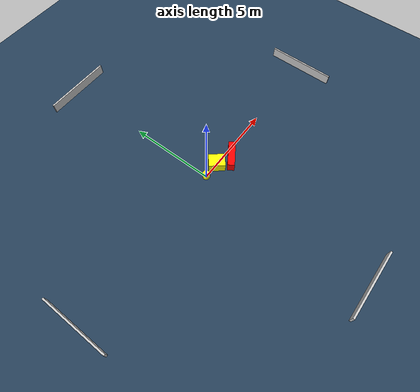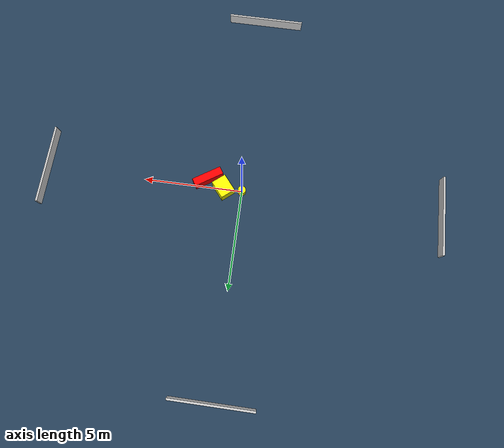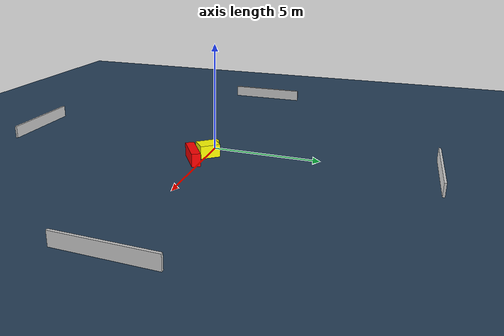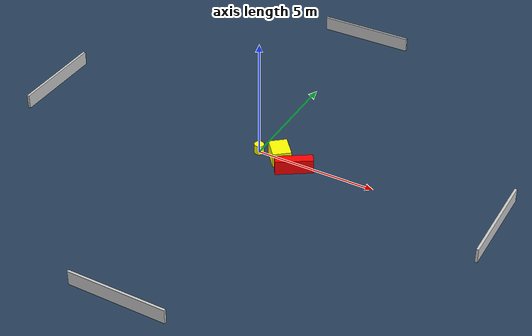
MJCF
<?xml version="1.0" ?>
<mujoco model="generated_environment">
  <option timestep="0.01" integrator="RK4" cone="elliptic"/>
  <default>
    <geom density="1"/>
  </default>
  <asset>
    <texture builtin="gradient" height="3072" name="skybox" rgb1="0.3 0.5 0.7" rgb2="0 0 0" type="skybox" width="512"/>
    <texture builtin="checker" height="300" name="groundplane" rgb1="0.2 0.3 0.4" rgb2="0.1 0.2 0.3" type="2d" width="300"/>
    <material name="groundplane" reflectance="0.2" texrepeat="5 5" texture="groundplane"/>
  </asset>
  <worldbody>
    <light dir="0 0 -1" directional="true" pos="0 0 1.5"/>
    <geom condim="3" friction="0.5 0.005 0.001" material="groundplane" name="floor" pos="0 0 0" size="0 0 0.05" type="plane"/>
    <body name="walls">
      <geom name="wall_1" condim="4" pos="-10.0 0.0 0.3" rgba="0.800000011920929 0.800000011920929 0.800000011920929 1.0" size="0.05 2.0 0.3" type="box"/>
      <geom name="wall_2" condim="4" pos="10.0 0.0 0.3" rgba="0.800000011920929 0.800000011920929 0.800000011920929 1.0" size="0.05 2.0 0.3" type="box"/>
      <geom name="wall_3" condim="4" pos="0.0 -10.0 0.3" rgba="0.800000011920929 0.800000011920929 0.800000011920929 1.0" size="2.0 0.05 0.3" type="box"/>
      <geom name="wall_4" condim="4" pos="0.0 10.0 0.3" rgba="0.800000011920929 0.800000011920929 0.800000011920929 1.0" size="2.0 0.05 0.3" type="box"/>
    </body>
    <body name="robot">
      <joint name="joint_x" type="slide" pos="0 0 0" axis="1 0 0"/>
      <joint name="joint_y" type="slide" pos="0 0 0" axis="0 1 0"/>
      <geom name="robot" type="cylinder" pos="0.0 0.0 0.2" size="0.2 0.2 0.0" mass="5.0" friction="1.0 0.005 0.0001" condim="4" rgba="1.0 1.0 0.0 1.0"/>
    </body>
    <body name="obstacle_1_movable">
      <geom name="obstacle_1_movable" condim="4" pos="0.9419615620276103 -0.011962169409508746 0.3" euler="0 0 129.66738985702017" friction="0.0 0.005 0.001" rgba="1.0 1.0 0.0 1.0" size="0.4661035291030492 0.3786759435641448 0.3" type="box" mass="0.1"/>
      <joint type="free"/>
    </body>
    <body name="obstacle_2_static">
      <geom name="obstacle_2_static" condim="4" pos="1.7886844529021617 -0.41798279850479036 0.3" euler="0 0 213.12684009326335" friction="0.0 0.005 0.001" rgba="1.0 0.0 0.0 1.0" size="0.7617859988020472 0.20236103744597633 0.3" type="box"/>
    </body>
  </worldbody>
  <actuator>
    <motor name="actuator_x" joint="joint_x" gear="1" ctrlrange="-1 1"/>
    <motor name="actuator_y" joint="joint_y" gear="1" ctrlrange="-1 1"/>
  </actuator>
</mujoco>
